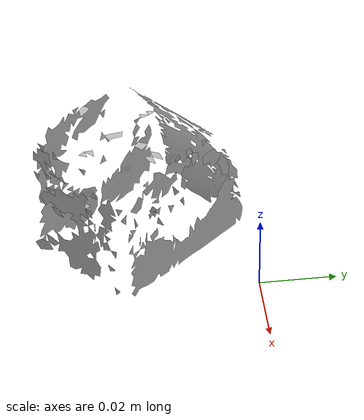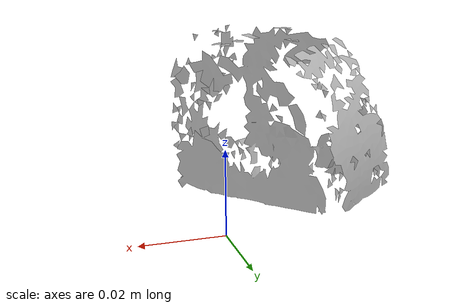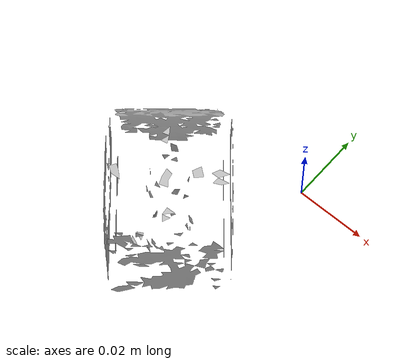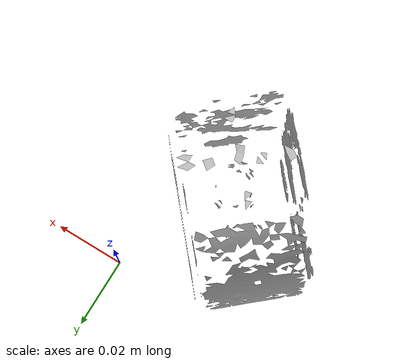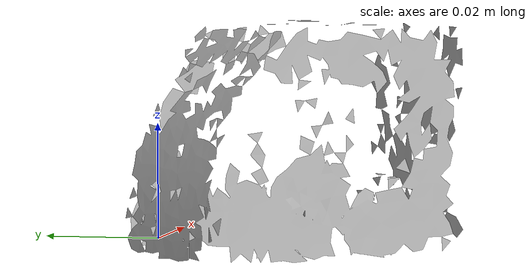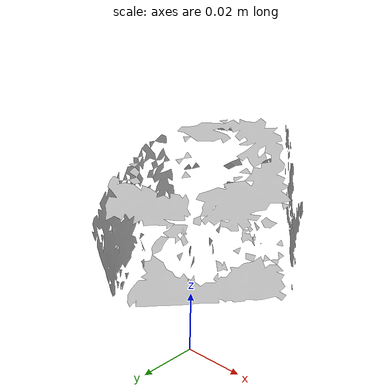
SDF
<?xml version="1.0" ?>
<sdf version="1.4">
  <model name='ycb_073-d_lego_duplo'>
    <link name='body'>
      <inertial>
        <mass>0.0512721146167</mass>
        <pose>-0.0202226089735 -0.0299113767489 0.0227752322301 0 0 0</pose>
        <inertia>
          <ixx>1.14010506065e-05</ixx>
          <ixy>1.83301019504e-06</ixy>
          <ixz>-6.7828143631e-07</ixz>
          <iyy>1.08471362912e-05</iyy>
          <iyz>8.24392907416e-07</iyz>
          <izz>1.30385368886e-05</izz>
        </inertia>
      </inertial>
      <visual name='ycb_073-d_lego_duplo_visual'>
        <pose>0 0 0 0 0 0</pose>
        <geometry>
          <mesh>
            <uri>model://ycb_073-d_lego_duplo/meshes/textured.dae</uri>
          </mesh>
        </geometry>
      </visual>
      <collision name='ycb_073-d_lego_duplo_collision'>
        <pose>0 0 0 0 0 0</pose>
        <geometry>
          <mesh>
            <uri>model://ycb_073-d_lego_duplo/meshes/nontextured.stl</uri>
          </mesh>
        </geometry>
        <max_contacts>10</max_contacts>
      </collision>
    </link>
  </model>
</sdf>
